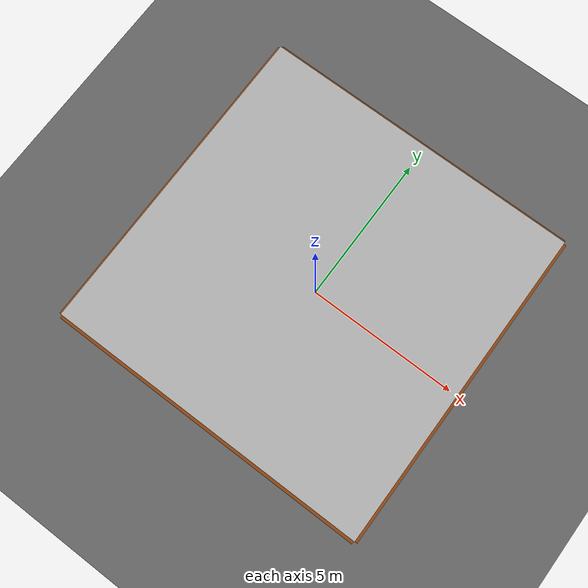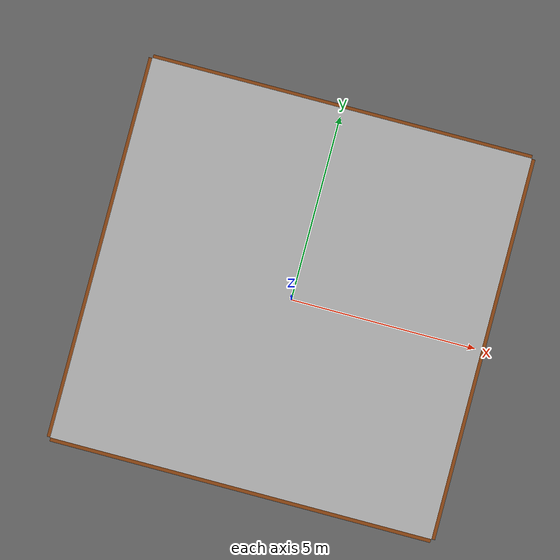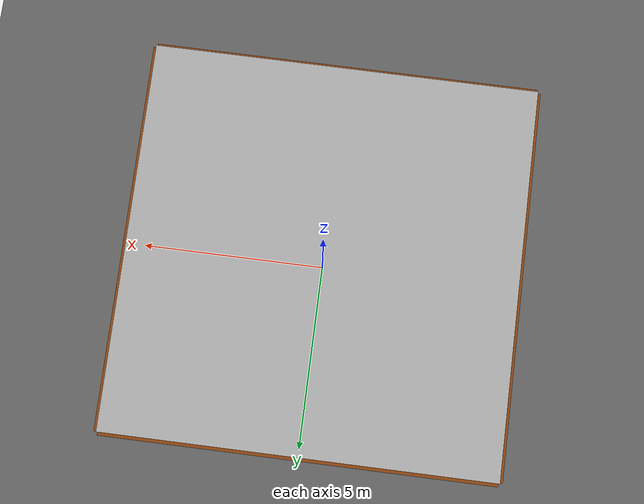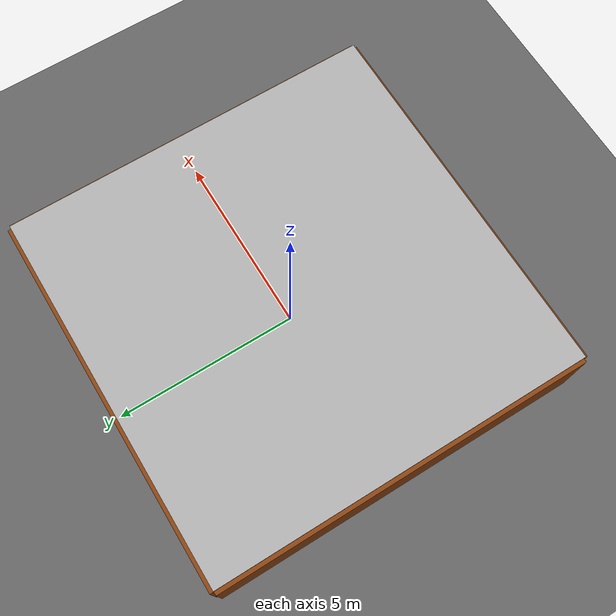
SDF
<?xml version="1.0" ?>
<sdf version="1.7">
  <world name="structured_env">

    <!-- Required Ignition Gazebo 6 system plugins                       -->
    <plugin filename="libignition-gazebo-physics-system.so"
            name="ignition::gazebo::systems::Physics"/>
    <plugin filename="libignition-gazebo-user-commands-system.so"
            name="ignition::gazebo::systems::UserCommands"/>
    <plugin filename="libignition-gazebo-scene-broadcaster-system.so"
            name="ignition::gazebo::systems::SceneBroadcaster"/>
    <!-- Sensors system is required for cameras to render -->
    <plugin filename="libignition-gazebo-sensors-system.so"
            name="ignition::gazebo::systems::Sensors">
      <render_engine>ogre2</render_engine>
    </plugin>

    <!-- Physics                                                          -->
    <physics name="default_physics" default="0" type="ode">
      <max_step_size>0.001</max_step_size>
      <real_time_factor>1</real_time_factor>
      <real_time_update_rate>1000</real_time_update_rate>
    </physics>

    <!-- Lighting                                                         -->
    <light name="sun" type="directional">
      <cast_shadows>true</cast_shadows>
      <pose>0 0 10 0 0 0</pose>
      <diffuse>0.8 0.8 0.8 1</diffuse>
      <specular>0.2 0.2 0.2 1</specular>
      <attenuation>
        <range>1000</range>
        <constant>0.9</constant>
        <linear>0.01</linear>
        <quadratic>0.001</quadratic>
      </attenuation>
      <direction>-0.5 0.1 -0.9</direction>
    </light>

    <light name="point_light_1" type="point">
      <pose>0 0 3 0 0 0</pose>
      <diffuse>0.7 0.7 0.7 1</diffuse>
      <specular>0.1 0.1 0.1 1</specular>
      <attenuation>
        <range>20</range>
        <constant>0.5</constant>
        <linear>0.1</linear>
        <quadratic>0.05</quadratic>
      </attenuation>
    </light>

    <!-- Ground plane (concrete grey)                                     -->
    <model name="ground_plane">
      <static>true</static>
      <link name="link">
        <collision name="collision">
          <geometry>
            <plane>
              <normal>0 0 1</normal>
              <size>20 20</size>
            </plane>
          </geometry>
          <surface>
            <friction>
              <ode><mu>100</mu><mu2>50</mu2></ode>
            </friction>
          </surface>
        </collision>
        <visual name="visual">
          <cast_shadows>false</cast_shadows>
          <geometry>
            <plane>
              <normal>0 0 1</normal>
              <size>20 20</size>
            </plane>
          </geometry>
          <material>
            <ambient>0.4 0.4 0.4 1</ambient>
            <diffuse>0.4 0.4 0.4 1</diffuse>
            <specular>0.1 0.1 0.1 1</specular>
          </material>
        </visual>
      </link>
    </model>

    <!-- Room walls (brick — warm reddish-brown)                         -->

    <model name="wall_north">
      <static>true</static>
      <pose>0 5 1 0 0 0</pose>
      <link name="link">
        <collision name="collision">
          <geometry><box><size>10 0.2 2</size></box></geometry>
        </collision>
        <visual name="visual">
          <geometry><box><size>10 0.2 2</size></box></geometry>
          <material>
            <ambient>0.55 0.27 0.07 1</ambient>
            <diffuse>0.55 0.27 0.07 1</diffuse>
            <specular>0.1 0.05 0.0 1</specular>
          </material>
        </visual>
      </link>
    </model>

    <model name="wall_south">
      <static>true</static>
      <pose>0 -5 1 0 0 0</pose>
      <link name="link">
        <collision name="collision">
          <geometry><box><size>10 0.2 2</size></box></geometry>
        </collision>
        <visual name="visual">
          <geometry><box><size>10 0.2 2</size></box></geometry>
          <material>
            <ambient>0.55 0.27 0.07 1</ambient>
            <diffuse>0.55 0.27 0.07 1</diffuse>
            <specular>0.1 0.05 0.0 1</specular>
          </material>
        </visual>
      </link>
    </model>

    <model name="wall_east">
      <static>true</static>
      <pose>5 0 1 0 0 1.5708</pose>
      <link name="link">
        <collision name="collision">
          <geometry><box><size>10 0.2 2</size></box></geometry>
        </collision>
        <visual name="visual">
          <geometry><box><size>10 0.2 2</size></box></geometry>
          <material>
            <ambient>0.55 0.27 0.07 1</ambient>
            <diffuse>0.55 0.27 0.07 1</diffuse>
            <specular>0.1 0.05 0.0 1</specular>
          </material>
        </visual>
      </link>
    </model>

    <model name="wall_west">
      <static>true</static>
      <pose>-5 0 1 0 0 1.5708</pose>
      <link name="link">
        <collision name="collision">
          <geometry><box><size>10 0.2 2</size></box></geometry>
        </collision>
        <visual name="visual">
          <geometry><box><size>10 0.2 2</size></box></geometry>
          <material>
            <ambient>0.55 0.27 0.07 1</ambient>
            <diffuse>0.55 0.27 0.07 1</diffuse>
            <specular>0.1 0.05 0.0 1</specular>
          </material>
        </visual>
      </link>
    </model>

    <!-- Interior obstacles (varied colours = varied keypoint regions)   -->

    <!-- Bookshelf — dark brown wood -->
    <model name="bookshelf_1">
      <static>true</static>
      <pose>-3 2 0.9 0 0 0</pose>
      <link name="link">
        <collision name="collision">
          <geometry><box><size>0.5 1.0 1.8</size></box></geometry>
        </collision>
        <visual name="visual">
          <geometry><box><size>0.5 1.0 1.8</size></box></geometry>
          <material>
            <ambient>0.36 0.18 0.09 1</ambient>
            <diffuse>0.36 0.18 0.09 1</diffuse>
            <specular>0.2 0.1 0.05 1</specular>
          </material>
        </visual>
      </link>
    </model>

    <!-- Table — lighter wood floor colour -->
    <model name="table_1">
      <static>true</static>
      <pose>2 -2 0.4 0 0 0</pose>
      <link name="link">
        <collision name="collision">
          <geometry><box><size>1.2 0.8 0.8</size></box></geometry>
        </collision>
        <visual name="visual">
          <geometry><box><size>1.2 0.8 0.8</size></box></geometry>
          <material>
            <ambient>0.65 0.45 0.25 1</ambient>
            <diffuse>0.65 0.45 0.25 1</diffuse>
            <specular>0.3 0.2 0.1 1</specular>
          </material>
        </visual>
      </link>
    </model>

    <!-- Pillar 1 — concrete grey -->
    <model name="pillar_1">
      <static>true</static>
      <pose>2 2 1.0 0 0 0</pose>
      <link name="link">
        <collision name="collision">
          <geometry><cylinder><radius>0.15</radius><length>2.0</length></cylinder></geometry>
        </collision>
        <visual name="visual">
          <geometry><cylinder><radius>0.15</radius><length>2.0</length></cylinder></geometry>
          <material>
            <ambient>0.5 0.5 0.5 1</ambient>
            <diffuse>0.5 0.5 0.5 1</diffuse>
            <specular>0.2 0.2 0.2 1</specular>
          </material>
        </visual>
      </link>
    </model>

    <!-- Pillar 2 — concrete grey -->
    <model name="pillar_2">
      <static>true</static>
      <pose>-2 -2 1.0 0 0 0</pose>
      <link name="link">
        <collision name="collision">
          <geometry><cylinder><radius>0.15</radius><length>2.0</length></cylinder></geometry>
        </collision>
        <visual name="visual">
          <geometry><cylinder><radius>0.15</radius><length>2.0</length></cylinder></geometry>
          <material>
            <ambient>0.5 0.5 0.5 1</ambient>
            <diffuse>0.5 0.5 0.5 1</diffuse>
            <specular>0.2 0.2 0.2 1</specular>
          </material>
        </visual>
      </link>
    </model>

    <!-- Crate 1 — teal -->
    <model name="crate_1">
      <static>true</static>
      <pose>-2 3.5 0.3 0 0 0.5</pose>
      <link name="link">
        <collision name="collision">
          <geometry><box><size>0.6 0.6 0.6</size></box></geometry>
        </collision>
        <visual name="visual">
          <geometry><box><size>0.6 0.6 0.6</size></box></geometry>
          <material>
            <ambient>0.2 0.5 0.5 1</ambient>
            <diffuse>0.2 0.5 0.5 1</diffuse>
            <specular>0.1 0.2 0.2 1</specular>
          </material>
        </visual>
      </link>
    </model>

    <!-- Crate 2 — orange -->
    <model name="crate_2">
      <static>true</static>
      <pose>3 -3.5 0.3 0 0 0.8</pose>
      <link name="link">
        <collision name="collision">
          <geometry><box><size>0.6 0.6 0.6</size></box></geometry>
        </collision>
        <visual name="visual">
          <geometry><box><size>0.6 0.6 0.6</size></box></geometry>
          <material>
            <ambient>0.8 0.4 0.1 1</ambient>
            <diffuse>0.8 0.4 0.1 1</diffuse>
            <specular>0.2 0.1 0.0 1</specular>
          </material>
        </visual>
      </link>
    </model>

    <!-- Ceiling — light grey -->
    <model name="ceiling">
      <static>true</static>
      <pose>0 0 2.1 0 0 0</pose>
      <link name="link">
        <visual name="visual">
          <geometry><box><size>10 10 0.1</size></box></geometry>
          <material>
            <ambient>0.7 0.7 0.7 1</ambient>
            <diffuse>0.7 0.7 0.7 1</diffuse>
            <specular>0.1 0.1 0.1 1</specular>
          </material>
        </visual>
      </link>
    </model>

    <!-- Checkerboard floor tiles (5x5 grid, 2m x 2m each)              -->
    <!-- Alternating dark/light grey — dense corner grid for SuperPoint  -->

    <model name="tile_0_0"><static>true</static><pose>-4 -4 0.005 0 0 0</pose><link name="link"><visual name="v"><geometry><box><size>1.96 1.96 0.01</size></box></geometry><material><ambient>0.2 0.2 0.2 1</ambient><diffuse>0.2 0.2 0.2 1</diffuse><specular>0.05 0.05 0.05 1</specular></material></visual></link></model>
    <model name="tile_1_0"><static>true</static><pose>-2 -4 0.005 0 0 0</pose><link name="link"><visual name="v"><geometry><box><size>1.96 1.96 0.01</size></box></geometry><material><ambient>0.75 0.75 0.75 1</ambient><diffuse>0.75 0.75 0.75 1</diffuse><specular>0.1 0.1 0.1 1</specular></material></visual></link></model>
    <model name="tile_2_0"><static>true</static><pose>0 -4 0.005 0 0 0</pose><link name="link"><visual name="v"><geometry><box><size>1.96 1.96 0.01</size></box></geometry><material><ambient>0.2 0.2 0.2 1</ambient><diffuse>0.2 0.2 0.2 1</diffuse><specular>0.05 0.05 0.05 1</specular></material></visual></link></model>
    <model name="tile_3_0"><static>true</static><pose>2 -4 0.005 0 0 0</pose><link name="link"><visual name="v"><geometry><box><size>1.96 1.96 0.01</size></box></geometry><material><ambient>0.75 0.75 0.75 1</ambient><diffuse>0.75 0.75 0.75 1</diffuse><specular>0.1 0.1 0.1 1</specular></material></visual></link></model>
    <model name="tile_4_0"><static>true</static><pose>4 -4 0.005 0 0 0</pose><link name="link"><visual name="v"><geometry><box><size>1.96 1.96 0.01</size></box></geometry><material><ambient>0.2 0.2 0.2 1</ambient><diffuse>0.2 0.2 0.2 1</diffuse><specular>0.05 0.05 0.05 1</specular></material></visual></link></model>

    <model name="tile_0_1"><static>true</static><pose>-4 -2 0.005 0 0 0</pose><link name="link"><visual name="v"><geometry><box><size>1.96 1.96 0.01</size></box></geometry><material><ambient>0.75 0.75 0.75 1</ambient><diffuse>0.75 0.75 0.75 1</diffuse><specular>0.1 0.1 0.1 1</specular></material></visual></link></model>
    <model name="tile_1_1"><static>true</static><pose>-2 -2 0.005 0 0 0</pose><link name="link"><visual name="v"><geometry><box><size>1.96 1.96 0.01</size></box></geometry><material><ambient>0.2 0.2 0.2 1</ambient><diffuse>0.2 0.2 0.2 1</diffuse><specular>0.05 0.05 0.05 1</specular></material></visual></link></model>
    <model name="tile_2_1"><static>true</static><pose>0 -2 0.005 0 0 0</pose><link name="link"><visual name="v"><geometry><box><size>1.96 1.96 0.01</size></box></geometry><material><ambient>0.75 0.75 0.75 1</ambient><diffuse>0.75 0.75 0.75 1</diffuse><specular>0.1 0.1 0.1 1</specular></material></visual></link></model>
    <model name="tile_3_1"><static>true</static><pose>2 -2 0.005 0 0 0</pose><link name="link"><visual name="v"><geometry><box><size>1.96 1.96 0.01</size></box></geometry><material><ambient>0.2 0.2 0.2 1</ambient><diffuse>0.2 0.2 0.2 1</diffuse><specular>0.05 0.05 0.05 1</specular></material></visual></link></model>
    <model name="tile_4_1"><static>true</static><pose>4 -2 0.005 0 0 0</pose><link name="link"><visual name="v"><geometry><box><size>1.96 1.96 0.01</size></box></geometry><material><ambient>0.75 0.75 0.75 1</ambient><diffuse>0.75 0.75 0.75 1</diffuse><specular>0.1 0.1 0.1 1</specular></material></visual></link></model>

    <model name="tile_0_2"><static>true</static><pose>-4 0 0.005 0 0 0</pose><link name="link"><visual name="v"><geometry><box><size>1.96 1.96 0.01</size></box></geometry><material><ambient>0.2 0.2 0.2 1</ambient><diffuse>0.2 0.2 0.2 1</diffuse><specular>0.05 0.05 0.05 1</specular></material></visual></link></model>
    <model name="tile_1_2"><static>true</static><pose>-2 0 0.005 0 0 0</pose><link name="link"><visual name="v"><geometry><box><size>1.96 1.96 0.01</size></box></geometry><material><ambient>0.75 0.75 0.75 1</ambient><diffuse>0.75 0.75 0.75 1</diffuse><specular>0.1 0.1 0.1 1</specular></material></visual></link></model>
    <model name="tile_2_2"><static>true</static><pose>0 0 0.005 0 0 0</pose><link name="link"><visual name="v"><geometry><box><size>1.96 1.96 0.01</size></box></geometry><material><ambient>0.2 0.2 0.2 1</ambient><diffuse>0.2 0.2 0.2 1</diffuse><specular>0.05 0.05 0.05 1</specular></material></visual></link></model>
    <model name="tile_3_2"><static>true</static><pose>2 0 0.005 0 0 0</pose><link name="link"><visual name="v"><geometry><box><size>1.96 1.96 0.01</size></box></geometry><material><ambient>0.75 0.75 0.75 1</ambient><diffuse>0.75 0.75 0.75 1</diffuse><specular>0.1 0.1 0.1 1</specular></material></visual></link></model>
    <model name="tile_4_2"><static>true</static><pose>4 0 0.005 0 0 0</pose><link name="link"><visual name="v"><geometry><box><size>1.96 1.96 0.01</size></box></geometry><material><ambient>0.2 0.2 0.2 1</ambient><diffuse>0.2 0.2 0.2 1</diffuse><specular>0.05 0.05 0.05 1</specular></material></visual></link></model>

    <model name="tile_0_3"><static>true</static><pose>-4 2 0.005 0 0 0</pose><link name="link"><visual name="v"><geometry><box><size>1.96 1.96 0.01</size></box></geometry><material><ambient>0.75 0.75 0.75 1</ambient><diffuse>0.75 0.75 0.75 1</diffuse><specular>0.1 0.1 0.1 1</specular></material></visual></link></model>
    <model name="tile_1_3"><static>true</static><pose>-2 2 0.005 0 0 0</pose><link name="link"><visual name="v"><geometry><box><size>1.96 1.96 0.01</size></box></geometry><material><ambient>0.2 0.2 0.2 1</ambient><diffuse>0.2 0.2 0.2 1</diffuse><specular>0.05 0.05 0.05 1</specular></material></visual></link></model>
    <model name="tile_2_3"><static>true</static><pose>0 2 0.005 0 0 0</pose><link name="link"><visual name="v"><geometry><box><size>1.96 1.96 0.01</size></box></geometry><material><ambient>0.75 0.75 0.75 1</ambient><diffuse>0.75 0.75 0.75 1</diffuse><specular>0.1 0.1 0.1 1</specular></material></visual></link></model>
    <model name="tile_3_3"><static>true</static><pose>2 2 0.005 0 0 0</pose><link name="link"><visual name="v"><geometry><box><size>1.96 1.96 0.01</size></box></geometry><material><ambient>0.2 0.2 0.2 1</ambient><diffuse>0.2 0.2 0.2 1</diffuse><specular>0.05 0.05 0.05 1</specular></material></visual></link></model>
    <model name="tile_4_3"><static>true</static><pose>4 2 0.005 0 0 0</pose><link name="link"><visual name="v"><geometry><box><size>1.96 1.96 0.01</size></box></geometry><material><ambient>0.75 0.75 0.75 1</ambient><diffuse>0.75 0.75 0.75 1</diffuse><specular>0.1 0.1 0.1 1</specular></material></visual></link></model>

    <model name="tile_0_4"><static>true</static><pose>-4 4 0.005 0 0 0</pose><link name="link"><visual name="v"><geometry><box><size>1.96 1.96 0.01</size></box></geometry><material><ambient>0.2 0.2 0.2 1</ambient><diffuse>0.2 0.2 0.2 1</diffuse><specular>0.05 0.05 0.05 1</specular></material></visual></link></model>
    <model name="tile_1_4"><static>true</static><pose>-2 4 0.005 0 0 0</pose><link name="link"><visual name="v"><geometry><box><size>1.96 1.96 0.01</size></box></geometry><material><ambient>0.75 0.75 0.75 1</ambient><diffuse>0.75 0.75 0.75 1</diffuse><specular>0.1 0.1 0.1 1</specular></material></visual></link></model>
    <model name="tile_2_4"><static>true</static><pose>0 4 0.005 0 0 0</pose><link name="link"><visual name="v"><geometry><box><size>1.96 1.96 0.01</size></box></geometry><material><ambient>0.2 0.2 0.2 1</ambient><diffuse>0.2 0.2 0.2 1</diffuse><specular>0.05 0.05 0.05 1</specular></material></visual></link></model>
    <model name="tile_3_4"><static>true</static><pose>2 4 0.005 0 0 0</pose><link name="link"><visual name="v"><geometry><box><size>1.96 1.96 0.01</size></box></geometry><material><ambient>0.75 0.75 0.75 1</ambient><diffuse>0.75 0.75 0.75 1</diffuse><specular>0.1 0.1 0.1 1</specular></material></visual></link></model>
    <model name="tile_4_4"><static>true</static><pose>4 4 0.005 0 0 0</pose><link name="link"><visual name="v"><geometry><box><size>1.96 1.96 0.01</size></box></geometry><material><ambient>0.2 0.2 0.2 1</ambient><diffuse>0.2 0.2 0.2 1</diffuse><specular>0.05 0.05 0.05 1</specular></material></visual></link></model>

    <!-- Wall panels — high-contrast rectangles at camera height         -->
    <!-- Creates rectangular edges against the brick background          -->

    <!-- North wall panels (interior face at y ≈ 4.9) -->
    <model name="panel_north_left">
      <static>true</static>
      <pose>-3 4.92 1.1 0 0 0</pose>
      <link name="link">
        <visual name="v">
          <geometry><box><size>0.7 0.04 0.7</size></box></geometry>
          <material>
            <ambient>0.8 0.15 0.1 1</ambient>
            <diffuse>0.8 0.15 0.1 1</diffuse>
            <specular>0.3 0.1 0.1 1</specular>
          </material>
        </visual>
      </link>
    </model>

    <model name="panel_north_mid">
      <static>true</static>
      <pose>0 4.92 1.1 0 0 0</pose>
      <link name="link">
        <visual name="v">
          <geometry><box><size>0.7 0.04 0.7</size></box></geometry>
          <material>
            <ambient>0.1 0.5 0.15 1</ambient>
            <diffuse>0.1 0.5 0.15 1</diffuse>
            <specular>0.1 0.3 0.1 1</specular>
          </material>
        </visual>
      </link>
    </model>

    <model name="panel_north_right">
      <static>true</static>
      <pose>3 4.92 1.1 0 0 0</pose>
      <link name="link">
        <visual name="v">
          <geometry><box><size>0.7 0.04 0.7</size></box></geometry>
          <material>
            <ambient>0.1 0.2 0.8 1</ambient>
            <diffuse>0.1 0.2 0.8 1</diffuse>
            <specular>0.1 0.1 0.4 1</specular>
          </material>
        </visual>
      </link>
    </model>

    <!-- South wall panels (interior face at y ≈ -4.9) -->
    <model name="panel_south_left">
      <static>true</static>
      <pose>-3 -4.92 1.1 0 0 0</pose>
      <link name="link">
        <visual name="v">
          <geometry><box><size>0.7 0.04 0.7</size></box></geometry>
          <material>
            <ambient>0.85 0.65 0.05 1</ambient>
            <diffuse>0.85 0.65 0.05 1</diffuse>
            <specular>0.3 0.2 0.0 1</specular>
          </material>
        </visual>
      </link>
    </model>

    <model name="panel_south_mid">
      <static>true</static>
      <pose>0 -4.92 1.1 0 0 0</pose>
      <link name="link">
        <visual name="v">
          <geometry><box><size>0.7 0.04 0.7</size></box></geometry>
          <material>
            <ambient>0.55 0.1 0.7 1</ambient>
            <diffuse>0.55 0.1 0.7 1</diffuse>
            <specular>0.2 0.05 0.3 1</specular>
          </material>
        </visual>
      </link>
    </model>

    <model name="panel_south_right">
      <static>true</static>
      <pose>3 -4.92 1.1 0 0 0</pose>
      <link name="link">
        <visual name="v">
          <geometry><box><size>0.7 0.04 0.7</size></box></geometry>
          <material>
            <ambient>0.05 0.65 0.7 1</ambient>
            <diffuse>0.05 0.65 0.7 1</diffuse>
            <specular>0.0 0.2 0.3 1</specular>
          </material>
        </visual>
      </link>
    </model>

    <!-- East and west wall accent stripes (horizontal bands at two heights) -->
    <model name="stripe_east_low">
      <static>true</static>
      <pose>4.92 0 0.5 0 0 0</pose>
      <link name="link">
        <visual name="v">
          <geometry><box><size>0.04 8.0 0.15</size></box></geometry>
          <material>
            <ambient>0.7 0.55 0.3 1</ambient>
            <diffuse>0.7 0.55 0.3 1</diffuse>
            <specular>0.2 0.15 0.05 1</specular>
          </material>
        </visual>
      </link>
    </model>

    <model name="stripe_east_high">
      <static>true</static>
      <pose>4.92 0 1.5 0 0 0</pose>
      <link name="link">
        <visual name="v">
          <geometry><box><size>0.04 8.0 0.15</size></box></geometry>
          <material>
            <ambient>0.3 0.3 0.5 1</ambient>
            <diffuse>0.3 0.3 0.5 1</diffuse>
            <specular>0.1 0.1 0.2 1</specular>
          </material>
        </visual>
      </link>
    </model>

    <model name="stripe_west_low">
      <static>true</static>
      <pose>-4.92 0 0.5 0 0 0</pose>
      <link name="link">
        <visual name="v">
          <geometry><box><size>0.04 8.0 0.15</size></box></geometry>
          <material>
            <ambient>0.7 0.55 0.3 1</ambient>
            <diffuse>0.7 0.55 0.3 1</diffuse>
            <specular>0.2 0.15 0.05 1</specular>
          </material>
        </visual>
      </link>
    </model>

    <model name="stripe_west_high">
      <static>true</static>
      <pose>-4.92 0 1.5 0 0 0</pose>
      <link name="link">
        <visual name="v">
          <geometry><box><size>0.04 8.0 0.15</size></box></geometry>
          <material>
            <ambient>0.3 0.3 0.5 1</ambient>
            <diffuse>0.3 0.3 0.5 1</diffuse>
            <specular>0.1 0.1 0.2 1</specular>
          </material>
        </visual>
      </link>
    </model>

    <!-- Additional objects — more corners at varied depths              -->

    <!-- Barrel — olive green cylinder -->
    <model name="barrel_1">
      <static>true</static>
      <pose>-3 -2 0.4 0 0 0</pose>
      <link name="link">
        <collision name="collision">
          <geometry><cylinder><radius>0.15</radius><length>0.8</length></cylinder></geometry>
        </collision>
        <visual name="visual">
          <geometry><cylinder><radius>0.15</radius><length>0.8</length></cylinder></geometry>
          <material>
            <ambient>0.33 0.42 0.18 1</ambient>
            <diffuse>0.33 0.42 0.18 1</diffuse>
            <specular>0.1 0.15 0.05 1</specular>
          </material>
        </visual>
      </link>
    </model>

    <!-- Book stack on the table (table top is at z=0.8) -->
    <model name="book_stack">
      <static>true</static>
      <pose>2 -2 0.85 0 0 0.3</pose>
      <link name="link">
        <collision name="collision">
          <geometry><box><size>0.28 0.18 0.12</size></box></geometry>
        </collision>
        <visual name="visual">
          <geometry><box><size>0.28 0.18 0.12</size></box></geometry>
          <material>
            <ambient>0.6 0.1 0.1 1</ambient>
            <diffuse>0.6 0.1 0.1 1</diffuse>
            <specular>0.2 0.05 0.05 1</specular>
          </material>
        </visual>
      </link>
    </model>

    <!-- Stacked small crates near east wall -->
    <model name="crate_stack_bottom">
      <static>true</static>
      <pose>3.5 3 0.3 0 0 0.4</pose>
      <link name="link">
        <collision name="collision">
          <geometry><box><size>0.6 0.6 0.6</size></box></geometry>
        </collision>
        <visual name="visual">
          <geometry><box><size>0.6 0.6 0.6</size></box></geometry>
          <material>
            <ambient>0.5 0.25 0.5 1</ambient>
            <diffuse>0.5 0.25 0.5 1</diffuse>
            <specular>0.15 0.05 0.15 1</specular>
          </material>
        </visual>
      </link>
    </model>

    <model name="crate_stack_top">
      <static>true</static>
      <pose>3.5 3 0.9 0 0 0.9</pose>
      <link name="link">
        <collision name="collision">
          <geometry><box><size>0.5 0.5 0.5</size></box></geometry>
        </collision>
        <visual name="visual">
          <geometry><box><size>0.5 0.5 0.5</size></box></geometry>
          <material>
            <ambient>0.9 0.6 0.05 1</ambient>
            <diffuse>0.9 0.6 0.05 1</diffuse>
            <specular>0.3 0.2 0.0 1</specular>
          </material>
        </visual>
      </link>
    </model>

    <!-- GUI camera start position                                        -->
    <gui fullscreen="0">
      <camera name="user_camera">
        <pose>-8 0 6 0 0.5 0</pose>
        <view_controller>orbit</view_controller>
      </camera>
    </gui>

  </world>
</sdf>
